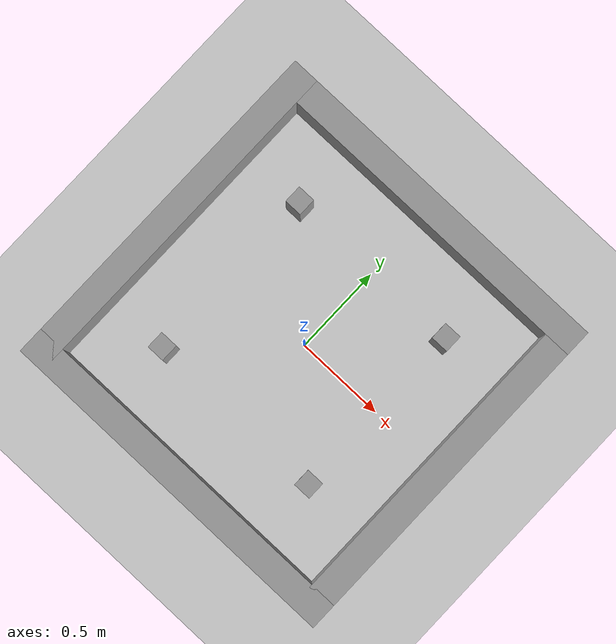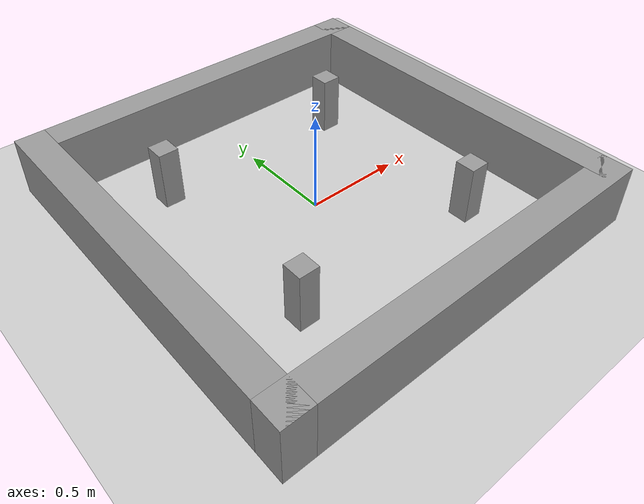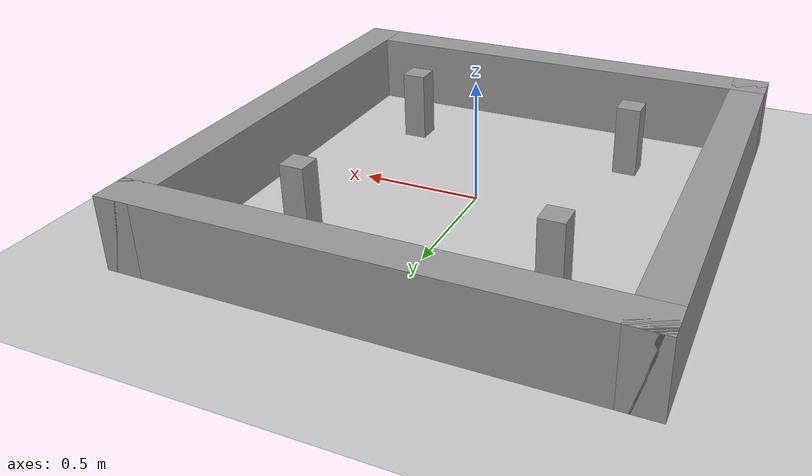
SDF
<sdf version="1.5">
 <world name="default">
  <include><uri>model://sun</uri></include>
  <include><uri>model://ground_plane</uri></include>
  <include><uri>model://robot_env_2x2</uri><static>true</static></include>
  <include><uri>model://unit_box</uri><static>false</static><pose>0.5 0.5 0 0 0 0</pose></include>
  <include><uri>model://unit_box</uri><static>false</static><pose>0.5 -0.5 0 0 0 0</pose></include>
  <include><uri>model://unit_box</uri><static>false</static><pose>-0.5 -0.5 0 0 0 0</pose></include>
  <include><uri>model://unit_box</uri><static>false</static><pose>-0.5 0.5 0 0 0 0</pose></include>
 </world>
</sdf>

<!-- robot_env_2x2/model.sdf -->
<sdf version='1.6'>
  <model name='robot_env_2x2'>
    <pose frame=''>0 0 0 0 0 0</pose>
    <link name='Wall_16'>
      <collision name='Wall_16_Collision'>
        <geometry>
          <box>
            <size>2 0.15 0.3</size>
          </box>
        </geometry>
        <pose frame=''>0 0 0.15 0 -0 0</pose>
      </collision>
      <visual name='Wall_16_Visual'>
        <pose frame=''>0 0 0.15 0 -0 0</pose>
        <geometry>
          <box>
            <size>2 0.15 0.3</size>
          </box>
        </geometry>
        <material>
          <script>
            <uri>file://media/materials/scripts/gazebo.material</uri>
            <name>Gazebo/Grey</name>
          </script>
          <ambient>1 1 1 1</ambient>
        </material>
        <meta>
          <layer>0</layer>
        </meta>
      </visual>
      <pose frame=''>0 0.925 0 0 -0 0</pose>
    </link>
    <link name='Wall_17'>
      <collision name='Wall_17_Collision'>
        <geometry>
          <box>
            <size>2 0.15 0.3</size>
          </box>
        </geometry>
        <pose frame=''>0 0 0.15 0 -0 0</pose>
      </collision>
      <visual name='Wall_17_Visual'>
        <pose frame=''>0 0 0.15 0 -0 0</pose>
        <geometry>
          <box>
            <size>2 0.15 0.3</size>
          </box>
        </geometry>
        <material>
          <script>
            <uri>file://media/materials/scripts/gazebo.material</uri>
            <name>Gazebo/Grey</name>
          </script>
          <ambient>1 1 1 1</ambient>
        </material>
        <meta>
          <layer>0</layer>
        </meta>
      </visual>
      <pose frame=''>0.925 0 0 0 -0 -1.5708</pose>
    </link>
    <link name='Wall_18'>
      <collision name='Wall_18_Collision'>
        <geometry>
          <box>
            <size>2 0.15 0.3</size>
          </box>
        </geometry>
        <pose frame=''>0 0 0.15 0 -0 0</pose>
      </collision>
      <visual name='Wall_18_Visual'>
        <pose frame=''>0 0 0.15 0 -0 0</pose>
        <geometry>
          <box>
            <size>2 0.15 0.3</size>
          </box>
        </geometry>
        <material>
          <script>
            <uri>file://media/materials/scripts/gazebo.material</uri>
            <name>Gazebo/Grey</name>
          </script>
          <ambient>1 1 1 1</ambient>
        </material>
        <meta>
          <layer>0</layer>
        </meta>
      </visual>
      <pose frame=''>0 -0.925 0 0 -0 3.14159</pose>
    </link>
    <link name='Wall_19'>
      <collision name='Wall_19_Collision'>
        <geometry>
          <box>
            <size>2 0.15 0.3</size>
          </box>
        </geometry>
        <pose frame=''>0 0 0.15 0 -0 0</pose>
      </collision>
      <visual name='Wall_19_Visual'>
        <pose frame=''>0 0 0.15 0 -0 0</pose>
        <geometry>
          <box>
            <size>2 0.15 0.3</size>
          </box>
        </geometry>
        <material>
          <script>
            <uri>file://media/materials/scripts/gazebo.material</uri>
            <name>Gazebo/Grey</name>
          </script>
          <ambient>1 1 1 1</ambient>
        </material>
        <meta>
          <layer>0</layer>
        </meta>
      </visual>
      <pose frame=''>-0.925 0 0 0 -0 1.5708</pose>
    </link>
    <static>1</static>
  </model>
</sdf>

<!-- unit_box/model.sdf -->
<sdf version='1.6'>
  <model name='unit_box'>
    <link name='link'>
      <inertial>
        <mass>0.117929</mass>
        <inertia>
          <ixx>0.00485566</ixx>
          <ixy>0</ixy>
          <ixz>0</ixz>
          <iyy>0.00445156</iyy>
          <iyz>0</iyz>
          <izz>0.00492543</izz>
        </inertia>
        <pose frame=''>0 0 0 0 0 0</pose>
      </inertial>
      <self_collide>0</self_collide>
      <enable_wind>0</enable_wind>
      <kinematic>0</kinematic>
      <pose frame=''> 0 0 0 0 0 0</pose>
      <gravity>1</gravity>
      <visual name='visual'>
        <geometry>
          <box>
            <size>0.1 0.1 0.3</size>
          </box>
        </geometry>
        <material>
          <script>
            <name>Gazebo/Grey</name>
            <uri>file://media/materials/scripts/gazebo.material</uri>
          </script>
          <shader type='vertex'>
            <normal_map>__default__</normal_map>
          </shader>
          <ambient>0.3 0.3 0.3 1</ambient>
          <diffuse>0.7 0.7 0.7 1</diffuse>
          <specular>0.01 0.01 0.01 1</specular>
          <emissive>0 0 0 1</emissive>
        </material>
        <pose frame=''>0 0 0.150000 0 0 0</pose>
        <transparency>0</transparency>
        <cast_shadows>1</cast_shadows>
      </visual>
      <collision name='collision'>
        <laser_retro>0</laser_retro>
        <max_contacts>10</max_contacts>
        <pose frame=''>0 0 0.150000 0 0 0</pose>
        <geometry>
          <box>
            <size>0.1 0.1 0.3</size>
          </box>
        </geometry>
        <surface>
          <friction>
            <ode>
              <mu>1</mu>
              <mu2>1</mu2>
              <fdir1>0 0 0</fdir1>
              <slip1>0</slip1>
              <slip2>0</slip2>
            </ode>
            <torsional>
              <coefficient>1</coefficient>
              <patch_radius>0</patch_radius>
              <surface_radius>0</surface_radius>
              <use_patch_radius>1</use_patch_radius>
              <ode>
                <slip>0</slip>
              </ode>
            </torsional>
          </friction>
          <bounce>
            <restitution_coefficient>0</restitution_coefficient>
            <threshold>1e+06</threshold>
          </bounce>
          <contact>
            <collide_without_contact>0</collide_without_contact>
            <collide_without_contact_bitmask>1</collide_without_contact_bitmask>
            <collide_bitmask>1</collide_bitmask>
            <ode>
              <soft_cfm>0</soft_cfm>
              <soft_erp>0.2</soft_erp>
              <kp>1e+13</kp>
              <kd>1</kd>
              <max_vel>0.01</max_vel>
              <min_depth>0</min_depth>
            </ode>
            <bullet>
              <split_impulse>1</split_impulse>
              <split_impulse_penetration_threshold>-0.01</split_impulse_penetration_threshold>
              <soft_cfm>0</soft_cfm>
              <soft_erp>0.2</soft_erp>
              <kp>1e+13</kp>
              <kd>1</kd>
            </bullet>
          </contact>
        </surface>
      </collision>
    </link>
    <static>0</static>
    <allow_auto_disable>0</allow_auto_disable>
  </model>
</sdf>
